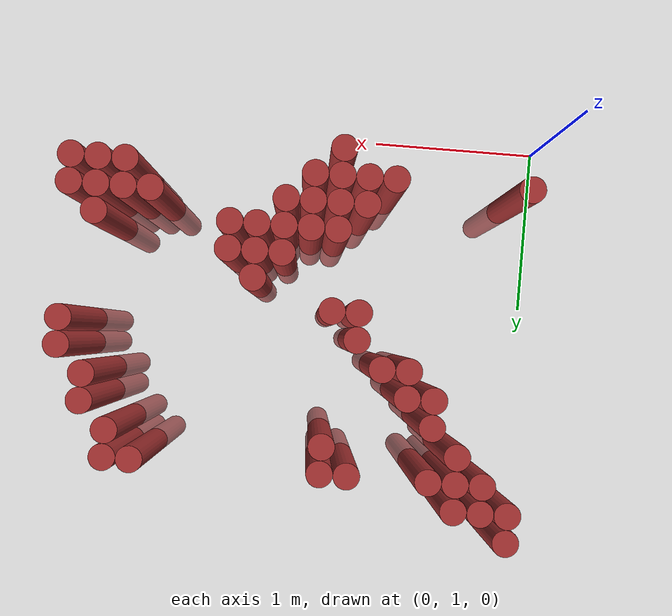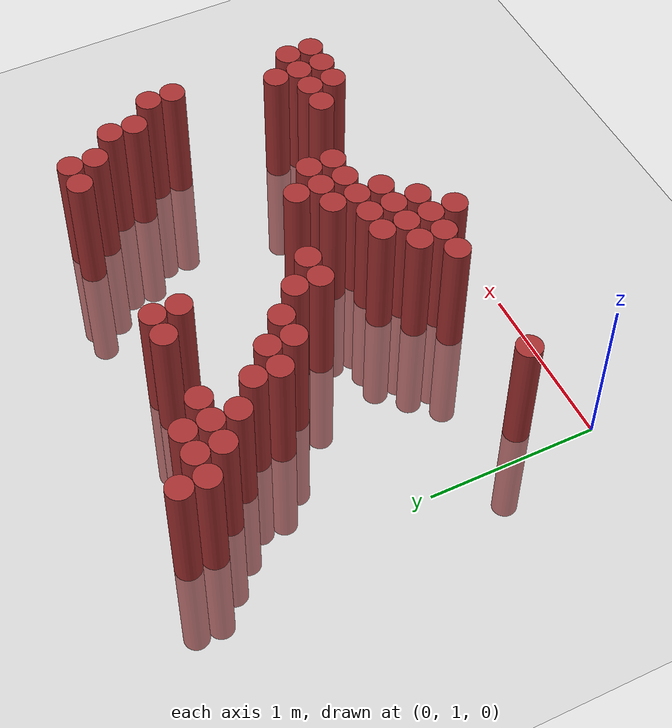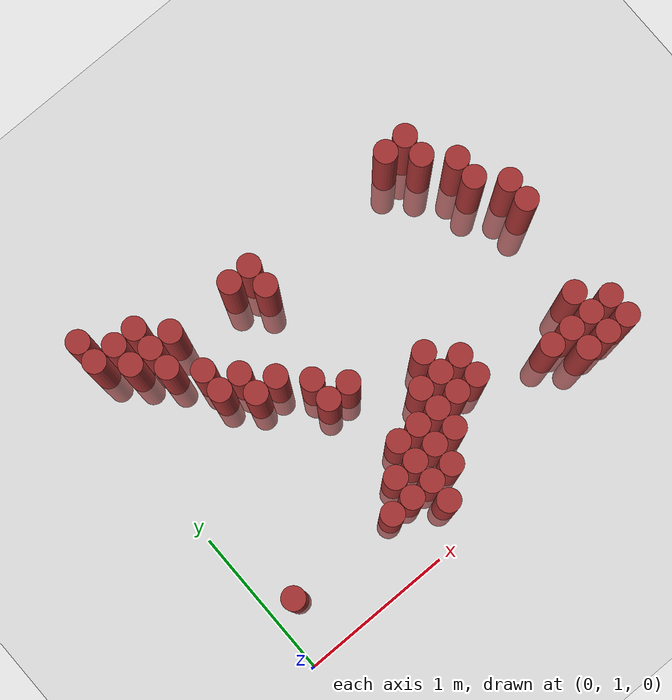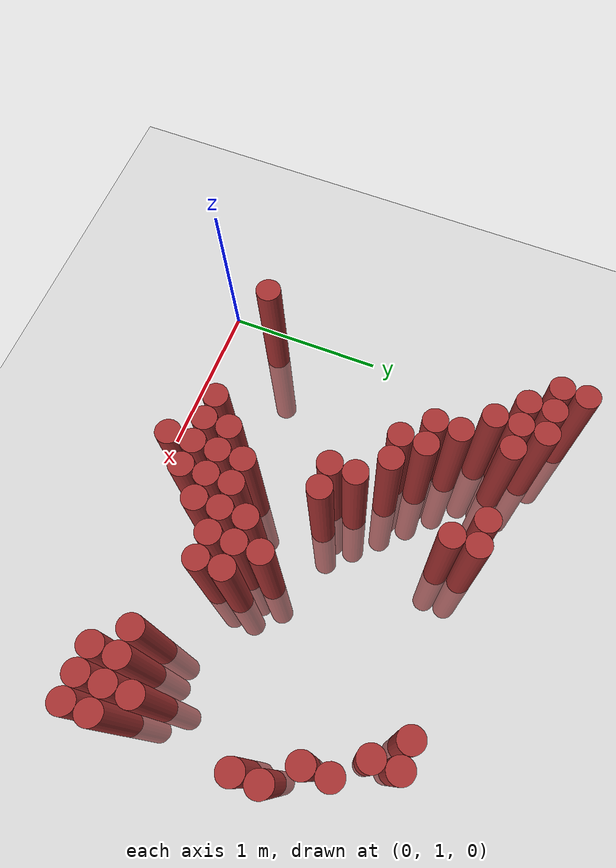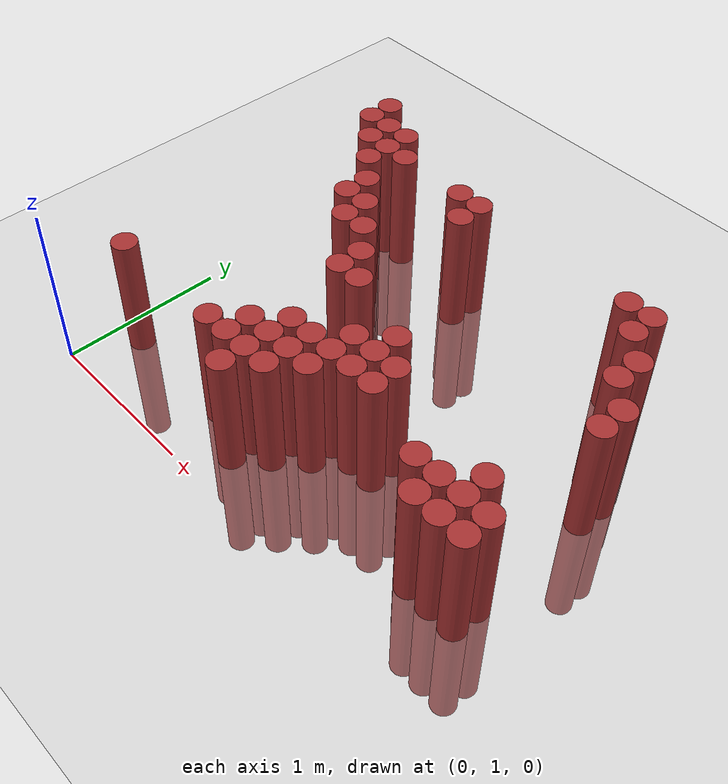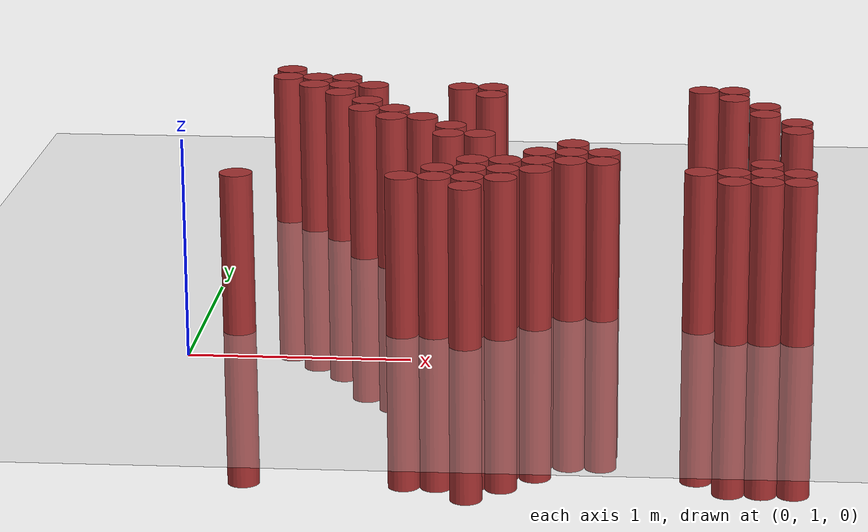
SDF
<sdf version="1.6">
 <world name="default">
  <model name="ground_plane">
   <static>1</static>
   <link name="link">
    <collision name="collision">
     <geometry><plane><normal>0 0 1</normal><size>100 100</size></plane></geometry>
     <surface><friction><ode><mu>100</mu><mu2>50</mu2></ode></friction></surface>
    </collision>
    <visual name="visual">
     <cast_shadows>0</cast_shadows>
     <geometry><plane><normal>0 0 1</normal><size>100 100</size></plane></geometry>
     <material>
      <script><uri>file://media/materials/scripts/gazebo.material</uri><name>Gazebo/Grey</name></script>
     </material>
    </visual>
   </link>
  </model>
  <model name="unit_cylinder_418">
   <static>1</static>
   <pose>0.175000 1.375000 0.000000 0.000000 0.000000 0.000000</pose>
   <link name="link">
    <inertial>
     <mass>1</mass>
     <inertia><ixx>0.145833</ixx><ixy>0</ixy><ixz>0</ixz><iyy>0.145833</iyy><iyz>0</iyz><izz>0.125</izz></inertia>
    </inertial>
    <collision name="collision">
     <geometry><cylinder><radius>0.075000</radius><length>1.5</length></cylinder></geometry>
    </collision>
    <visual name="visual">
     <geometry><cylinder><radius>0.075000</radius><length>1.5</length></cylinder></geometry>
     <material>
      <ambient>0.648000 0.192000 0.192000 1</ambient>
      <diffuse>0.648000 0.192000 0.192000 1</diffuse>
     </material>
     <material>
      <script><name>Gazebo/Grey</name><uri>file://media/materials/scripts/gazebo.material</uri></script>
     </material>
    </visual>
   </link>
  </model>
  <model name="unit_cylinder_419">
   <static>1</static>
   <pose>0.175000 3.175000 0.000000 0.000000 0.000000 0.000000</pose>
   <link name="link">
    <inertial>
     <mass>1</mass>
     <inertia><ixx>0.145833</ixx><ixy>0</ixy><ixz>0</ixz><iyy>0.145833</iyy><iyz>0</iyz><izz>0.125</izz></inertia>
    </inertial>
    <collision name="collision">
     <geometry><cylinder><radius>0.075000</radius><length>1.5</length></cylinder></geometry>
    </collision>
    <visual name="visual">
     <geometry><cylinder><radius>0.075000</radius><length>1.5</length></cylinder></geometry>
     <material>
      <ambient>0.648000 0.192000 0.192000 1</ambient>
      <diffuse>0.648000 0.192000 0.192000 1</diffuse>
     </material>
     <material>
      <script><name>Gazebo/Grey</name><uri>file://media/materials/scripts/gazebo.material</uri></script>
     </material>
    </visual>
   </link>
  </model>
  <model name="unit_cylinder_420">
   <static>1</static>
   <pose>0.175000 3.325000 0.000000 0.000000 0.000000 0.000000</pose>
   <link name="link">
    <inertial>
     <mass>1</mass>
     <inertia><ixx>0.145833</ixx><ixy>0</ixy><ixz>0</ixz><iyy>0.145833</iyy><iyz>0</iyz><izz>0.125</izz></inertia>
    </inertial>
    <collision name="collision">
     <geometry><cylinder><radius>0.075000</radius><length>1.5</length></cylinder></geometry>
    </collision>
    <visual name="visual">
     <geometry><cylinder><radius>0.075000</radius><length>1.5</length></cylinder></geometry>
     <material>
      <ambient>0.648000 0.192000 0.192000 1</ambient>
      <diffuse>0.648000 0.192000 0.192000 1</diffuse>
     </material>
     <material>
      <script><name>Gazebo/Grey</name><uri>file://media/materials/scripts/gazebo.material</uri></script>
     </material>
    </visual>
   </link>
  </model>
  <model name="unit_cylinder_428">
   <static>1</static>
   <pose>0.325000 3.025000 0.000000 0.000000 0.000000 0.000000</pose>
   <link name="link">
    <inertial>
     <mass>1</mass>
     <inertia><ixx>0.145833</ixx><ixy>0</ixy><ixz>0</ixz><iyy>0.145833</iyy><iyz>0</iyz><izz>0.125</izz></inertia>
    </inertial>
    <collision name="collision">
     <geometry><cylinder><radius>0.075000</radius><length>1.5</length></cylinder></geometry>
    </collision>
    <visual name="visual">
     <geometry><cylinder><radius>0.075000</radius><length>1.5</length></cylinder></geometry>
     <material>
      <ambient>0.648000 0.192000 0.192000 1</ambient>
      <diffuse>0.648000 0.192000 0.192000 1</diffuse>
     </material>
     <material>
      <script><name>Gazebo/Grey</name><uri>file://media/materials/scripts/gazebo.material</uri></script>
     </material>
    </visual>
   </link>
  </model>
  <model name="unit_cylinder_429">
   <static>1</static>
   <pose>0.325000 3.175000 0.000000 0.000000 0.000000 0.000000</pose>
   <link name="link">
    <inertial>
     <mass>1</mass>
     <inertia><ixx>0.145833</ixx><ixy>0</ixy><ixz>0</ixz><iyy>0.145833</iyy><iyz>0</iyz><izz>0.125</izz></inertia>
    </inertial>
    <collision name="collision">
     <geometry><cylinder><radius>0.075000</radius><length>1.5</length></cylinder></geometry>
    </collision>
    <visual name="visual">
     <geometry><cylinder><radius>0.075000</radius><length>1.5</length></cylinder></geometry>
     <material>
      <ambient>0.648000 0.192000 0.192000 1</ambient>
      <diffuse>0.648000 0.192000 0.192000 1</diffuse>
     </material>
     <material>
      <script><name>Gazebo/Grey</name><uri>file://media/materials/scripts/gazebo.material</uri></script>
     </material>
    </visual>
   </link>
  </model>
  <model name="unit_cylinder_437">
   <static>1</static>
   <pose>0.475000 2.875000 0.000000 0.000000 0.000000 0.000000</pose>
   <link name="link">
    <inertial>
     <mass>1</mass>
     <inertia><ixx>0.145833</ixx><ixy>0</ixy><ixz>0</ixz><iyy>0.145833</iyy><iyz>0</iyz><izz>0.125</izz></inertia>
    </inertial>
    <collision name="collision">
     <geometry><cylinder><radius>0.075000</radius><length>1.5</length></cylinder></geometry>
    </collision>
    <visual name="visual">
     <geometry><cylinder><radius>0.075000</radius><length>1.5</length></cylinder></geometry>
     <material>
      <ambient>0.648000 0.192000 0.192000 1</ambient>
      <diffuse>0.648000 0.192000 0.192000 1</diffuse>
     </material>
     <material>
      <script><name>Gazebo/Grey</name><uri>file://media/materials/scripts/gazebo.material</uri></script>
     </material>
    </visual>
   </link>
  </model>
  <model name="unit_cylinder_438">
   <static>1</static>
   <pose>0.475000 3.025000 0.000000 0.000000 0.000000 0.000000</pose>
   <link name="link">
    <inertial>
     <mass>1</mass>
     <inertia><ixx>0.145833</ixx><ixy>0</ixy><ixz>0</ixz><iyy>0.145833</iyy><iyz>0</iyz><izz>0.125</izz></inertia>
    </inertial>
    <collision name="collision">
     <geometry><cylinder><radius>0.075000</radius><length>1.5</length></cylinder></geometry>
    </collision>
    <visual name="visual">
     <geometry><cylinder><radius>0.075000</radius><length>1.5</length></cylinder></geometry>
     <material>
      <ambient>0.648000 0.192000 0.192000 1</ambient>
      <diffuse>0.648000 0.192000 0.192000 1</diffuse>
     </material>
     <material>
      <script><name>Gazebo/Grey</name><uri>file://media/materials/scripts/gazebo.material</uri></script>
     </material>
    </visual>
   </link>
  </model>
  <model name="unit_cylinder_439">
   <static>1</static>
   <pose>0.475000 3.175000 0.000000 0.000000 0.000000 0.000000</pose>
   <link name="link">
    <inertial>
     <mass>1</mass>
     <inertia><ixx>0.145833</ixx><ixy>0</ixy><ixz>0</ixz><iyy>0.145833</iyy><iyz>0</iyz><izz>0.125</izz></inertia>
    </inertial>
    <collision name="collision">
     <geometry><cylinder><radius>0.075000</radius><length>1.5</length></cylinder></geometry>
    </collision>
    <visual name="visual">
     <geometry><cylinder><radius>0.075000</radius><length>1.5</length></cylinder></geometry>
     <material>
      <ambient>0.648000 0.192000 0.192000 1</ambient>
      <diffuse>0.648000 0.192000 0.192000 1</diffuse>
     </material>
     <material>
      <script><name>Gazebo/Grey</name><uri>file://media/materials/scripts/gazebo.material</uri></script>
     </material>
    </visual>
   </link>
  </model>
  <model name="unit_cylinder_442">
   <static>1</static>
   <pose>0.625000 2.575000 0.000000 0.000000 0.000000 0.000000</pose>
   <link name="link">
    <inertial>
     <mass>1</mass>
     <inertia><ixx>0.145833</ixx><ixy>0</ixy><ixz>0</ixz><iyy>0.145833</iyy><iyz>0</iyz><izz>0.125</izz></inertia>
    </inertial>
    <collision name="collision">
     <geometry><cylinder><radius>0.075000</radius><length>1.5</length></cylinder></geometry>
    </collision>
    <visual name="visual">
     <geometry><cylinder><radius>0.075000</radius><length>1.5</length></cylinder></geometry>
     <material>
      <ambient>0.648000 0.192000 0.192000 1</ambient>
      <diffuse>0.648000 0.192000 0.192000 1</diffuse>
     </material>
     <material>
      <script><name>Gazebo/Grey</name><uri>file://media/materials/scripts/gazebo.material</uri></script>
     </material>
    </visual>
   </link>
  </model>
  <model name="unit_cylinder_443">
   <static>1</static>
   <pose>0.625000 2.725000 0.000000 0.000000 0.000000 0.000000</pose>
   <link name="link">
    <inertial>
     <mass>1</mass>
     <inertia><ixx>0.145833</ixx><ixy>0</ixy><ixz>0</ixz><iyy>0.145833</iyy><iyz>0</iyz><izz>0.125</izz></inertia>
    </inertial>
    <collision name="collision">
     <geometry><cylinder><radius>0.075000</radius><length>1.5</length></cylinder></geometry>
    </collision>
    <visual name="visual">
     <geometry><cylinder><radius>0.075000</radius><length>1.5</length></cylinder></geometry>
     <material>
      <ambient>0.648000 0.192000 0.192000 1</ambient>
      <diffuse>0.648000 0.192000 0.192000 1</diffuse>
     </material>
     <material>
      <script><name>Gazebo/Grey</name><uri>file://media/materials/scripts/gazebo.material</uri></script>
     </material>
    </visual>
   </link>
  </model>
  <model name="unit_cylinder_444">
   <static>1</static>
   <pose>0.625000 3.025000 0.000000 0.000000 0.000000 0.000000</pose>
   <link name="link">
    <inertial>
     <mass>1</mass>
     <inertia><ixx>0.145833</ixx><ixy>0</ixy><ixz>0</ixz><iyy>0.145833</iyy><iyz>0</iyz><izz>0.125</izz></inertia>
    </inertial>
    <collision name="collision">
     <geometry><cylinder><radius>0.075000</radius><length>1.5</length></cylinder></geometry>
    </collision>
    <visual name="visual">
     <geometry><cylinder><radius>0.075000</radius><length>1.5</length></cylinder></geometry>
     <material>
      <ambient>0.648000 0.192000 0.192000 1</ambient>
      <diffuse>0.648000 0.192000 0.192000 1</diffuse>
     </material>
     <material>
      <script><name>Gazebo/Grey</name><uri>file://media/materials/scripts/gazebo.material</uri></script>
     </material>
    </visual>
   </link>
  </model>
  <model name="unit_cylinder_451">
   <static>1</static>
   <pose>0.775000 2.425000 0.000000 0.000000 0.000000 0.000000</pose>
   <link name="link">
    <inertial>
     <mass>1</mass>
     <inertia><ixx>0.145833</ixx><ixy>0</ixy><ixz>0</ixz><iyy>0.145833</iyy><iyz>0</iyz><izz>0.125</izz></inertia>
    </inertial>
    <collision name="collision">
     <geometry><cylinder><radius>0.075000</radius><length>1.5</length></cylinder></geometry>
    </collision>
    <visual name="visual">
     <geometry><cylinder><radius>0.075000</radius><length>1.5</length></cylinder></geometry>
     <material>
      <ambient>0.648000 0.192000 0.192000 1</ambient>
      <diffuse>0.648000 0.192000 0.192000 1</diffuse>
     </material>
     <material>
      <script><name>Gazebo/Grey</name><uri>file://media/materials/scripts/gazebo.material</uri></script>
     </material>
    </visual>
   </link>
  </model>
  <model name="unit_cylinder_452">
   <static>1</static>
   <pose>0.775000 2.575000 0.000000 0.000000 0.000000 0.000000</pose>
   <link name="link">
    <inertial>
     <mass>1</mass>
     <inertia><ixx>0.145833</ixx><ixy>0</ixy><ixz>0</ixz><iyy>0.145833</iyy><iyz>0</iyz><izz>0.125</izz></inertia>
    </inertial>
    <collision name="collision">
     <geometry><cylinder><radius>0.075000</radius><length>1.5</length></cylinder></geometry>
    </collision>
    <visual name="visual">
     <geometry><cylinder><radius>0.075000</radius><length>1.5</length></cylinder></geometry>
     <material>
      <ambient>0.648000 0.192000 0.192000 1</ambient>
      <diffuse>0.648000 0.192000 0.192000 1</diffuse>
     </material>
     <material>
      <script><name>Gazebo/Grey</name><uri>file://media/materials/scripts/gazebo.material</uri></script>
     </material>
    </visual>
   </link>
  </model>
  <model name="unit_cylinder_467">
   <static>1</static>
   <pose>0.925000 1.375000 0.000000 0.000000 0.000000 0.000000</pose>
   <link name="link">
    <inertial>
     <mass>1</mass>
     <inertia><ixx>0.145833</ixx><ixy>0</ixy><ixz>0</ixz><iyy>0.145833</iyy><iyz>0</iyz><izz>0.125</izz></inertia>
    </inertial>
    <collision name="collision">
     <geometry><cylinder><radius>0.075000</radius><length>1.5</length></cylinder></geometry>
    </collision>
    <visual name="visual">
     <geometry><cylinder><radius>0.075000</radius><length>1.5</length></cylinder></geometry>
     <material>
      <ambient>0.648000 0.192000 0.192000 1</ambient>
      <diffuse>0.648000 0.192000 0.192000 1</diffuse>
     </material>
     <material>
      <script><name>Gazebo/Grey</name><uri>file://media/materials/scripts/gazebo.material</uri></script>
     </material>
    </visual>
   </link>
  </model>
  <model name="unit_cylinder_468">
   <static>1</static>
   <pose>0.925000 2.425000 0.000000 0.000000 0.000000 0.000000</pose>
   <link name="link">
    <inertial>
     <mass>1</mass>
     <inertia><ixx>0.145833</ixx><ixy>0</ixy><ixz>0</ixz><iyy>0.145833</iyy><iyz>0</iyz><izz>0.125</izz></inertia>
    </inertial>
    <collision name="collision">
     <geometry><cylinder><radius>0.075000</radius><length>1.5</length></cylinder></geometry>
    </collision>
    <visual name="visual">
     <geometry><cylinder><radius>0.075000</radius><length>1.5</length></cylinder></geometry>
     <material>
      <ambient>0.648000 0.192000 0.192000 1</ambient>
      <diffuse>0.648000 0.192000 0.192000 1</diffuse>
     </material>
     <material>
      <script><name>Gazebo/Grey</name><uri>file://media/materials/scripts/gazebo.material</uri></script>
     </material>
    </visual>
   </link>
  </model>
  <model name="unit_cylinder_477">
   <static>1</static>
   <pose>1.075000 1.375000 0.000000 0.000000 0.000000 0.000000</pose>
   <link name="link">
    <inertial>
     <mass>1</mass>
     <inertia><ixx>0.145833</ixx><ixy>0</ixy><ixz>0</ixz><iyy>0.145833</iyy><iyz>0</iyz><izz>0.125</izz></inertia>
    </inertial>
    <collision name="collision">
     <geometry><cylinder><radius>0.075000</radius><length>1.5</length></cylinder></geometry>
    </collision>
    <visual name="visual">
     <geometry><cylinder><radius>0.075000</radius><length>1.5</length></cylinder></geometry>
     <material>
      <ambient>0.648000 0.192000 0.192000 1</ambient>
      <diffuse>0.648000 0.192000 0.192000 1</diffuse>
     </material>
     <material>
      <script><name>Gazebo/Grey</name><uri>file://media/materials/scripts/gazebo.material</uri></script>
     </material>
    </visual>
   </link>
  </model>
  <model name="unit_cylinder_478">
   <static>1</static>
   <pose>1.075000 1.525000 0.000000 0.000000 0.000000 0.000000</pose>
   <link name="link">
    <inertial>
     <mass>1</mass>
     <inertia><ixx>0.145833</ixx><ixy>0</ixy><ixz>0</ixz><iyy>0.145833</iyy><iyz>0</iyz><izz>0.125</izz></inertia>
    </inertial>
    <collision name="collision">
     <geometry><cylinder><radius>0.075000</radius><length>1.5</length></cylinder></geometry>
    </collision>
    <visual name="visual">
     <geometry><cylinder><radius>0.075000</radius><length>1.5</length></cylinder></geometry>
     <material>
      <ambient>0.648000 0.192000 0.192000 1</ambient>
      <diffuse>0.648000 0.192000 0.192000 1</diffuse>
     </material>
     <material>
      <script><name>Gazebo/Grey</name><uri>file://media/materials/scripts/gazebo.material</uri></script>
     </material>
    </visual>
   </link>
  </model>
  <model name="unit_cylinder_479">
   <static>1</static>
   <pose>1.075000 2.125000 0.000000 0.000000 0.000000 0.000000</pose>
   <link name="link">
    <inertial>
     <mass>1</mass>
     <inertia><ixx>0.145833</ixx><ixy>0</ixy><ixz>0</ixz><iyy>0.145833</iyy><iyz>0</iyz><izz>0.125</izz></inertia>
    </inertial>
    <collision name="collision">
     <geometry><cylinder><radius>0.075000</radius><length>1.5</length></cylinder></geometry>
    </collision>
    <visual name="visual">
     <geometry><cylinder><radius>0.075000</radius><length>1.5</length></cylinder></geometry>
     <material>
      <ambient>0.648000 0.192000 0.192000 1</ambient>
      <diffuse>0.648000 0.192000 0.192000 1</diffuse>
     </material>
     <material>
      <script><name>Gazebo/Grey</name><uri>file://media/materials/scripts/gazebo.material</uri></script>
     </material>
    </visual>
   </link>
  </model>
  <model name="unit_cylinder_480">
   <static>1</static>
   <pose>1.075000 2.275000 0.000000 0.000000 0.000000 0.000000</pose>
   <link name="link">
    <inertial>
     <mass>1</mass>
     <inertia><ixx>0.145833</ixx><ixy>0</ixy><ixz>0</ixz><iyy>0.145833</iyy><iyz>0</iyz><izz>0.125</izz></inertia>
    </inertial>
    <collision name="collision">
     <geometry><cylinder><radius>0.075000</radius><length>1.5</length></cylinder></geometry>
    </collision>
    <visual name="visual">
     <geometry><cylinder><radius>0.075000</radius><length>1.5</length></cylinder></geometry>
     <material>
      <ambient>0.648000 0.192000 0.192000 1</ambient>
      <diffuse>0.648000 0.192000 0.192000 1</diffuse>
     </material>
     <material>
      <script><name>Gazebo/Grey</name><uri>file://media/materials/scripts/gazebo.material</uri></script>
     </material>
    </visual>
   </link>
  </model>
  <model name="unit_cylinder_481">
   <static>1</static>
   <pose>1.075000 3.025000 0.000000 0.000000 0.000000 0.000000</pose>
   <link name="link">
    <inertial>
     <mass>1</mass>
     <inertia><ixx>0.145833</ixx><ixy>0</ixy><ixz>0</ixz><iyy>0.145833</iyy><iyz>0</iyz><izz>0.125</izz></inertia>
    </inertial>
    <collision name="collision">
     <geometry><cylinder><radius>0.075000</radius><length>1.5</length></cylinder></geometry>
    </collision>
    <visual name="visual">
     <geometry><cylinder><radius>0.075000</radius><length>1.5</length></cylinder></geometry>
     <material>
      <ambient>0.648000 0.192000 0.192000 1</ambient>
      <diffuse>0.648000 0.192000 0.192000 1</diffuse>
     </material>
     <material>
      <script><name>Gazebo/Grey</name><uri>file://media/materials/scripts/gazebo.material</uri></script>
     </material>
    </visual>
   </link>
  </model>
  <model name="unit_cylinder_491">
   <static>1</static>
   <pose>1.225000 1.225000 0.000000 0.000000 0.000000 0.000000</pose>
   <link name="link">
    <inertial>
     <mass>1</mass>
     <inertia><ixx>0.145833</ixx><ixy>0</ixy><ixz>0</ixz><iyy>0.145833</iyy><iyz>0</iyz><izz>0.125</izz></inertia>
    </inertial>
    <collision name="collision">
     <geometry><cylinder><radius>0.075000</radius><length>1.5</length></cylinder></geometry>
    </collision>
    <visual name="visual">
     <geometry><cylinder><radius>0.075000</radius><length>1.5</length></cylinder></geometry>
     <material>
      <ambient>0.648000 0.192000 0.192000 1</ambient>
      <diffuse>0.648000 0.192000 0.192000 1</diffuse>
     </material>
     <material>
      <script><name>Gazebo/Grey</name><uri>file://media/materials/scripts/gazebo.material</uri></script>
     </material>
    </visual>
   </link>
  </model>
  <model name="unit_cylinder_492">
   <static>1</static>
   <pose>1.225000 1.375000 0.000000 0.000000 0.000000 0.000000</pose>
   <link name="link">
    <inertial>
     <mass>1</mass>
     <inertia><ixx>0.145833</ixx><ixy>0</ixy><ixz>0</ixz><iyy>0.145833</iyy><iyz>0</iyz><izz>0.125</izz></inertia>
    </inertial>
    <collision name="collision">
     <geometry><cylinder><radius>0.075000</radius><length>1.5</length></cylinder></geometry>
    </collision>
    <visual name="visual">
     <geometry><cylinder><radius>0.075000</radius><length>1.5</length></cylinder></geometry>
     <material>
      <ambient>0.648000 0.192000 0.192000 1</ambient>
      <diffuse>0.648000 0.192000 0.192000 1</diffuse>
     </material>
     <material>
      <script><name>Gazebo/Grey</name><uri>file://media/materials/scripts/gazebo.material</uri></script>
     </material>
    </visual>
   </link>
  </model>
  <model name="unit_cylinder_493">
   <static>1</static>
   <pose>1.225000 1.525000 0.000000 0.000000 0.000000 0.000000</pose>
   <link name="link">
    <inertial>
     <mass>1</mass>
     <inertia><ixx>0.145833</ixx><ixy>0</ixy><ixz>0</ixz><iyy>0.145833</iyy><iyz>0</iyz><izz>0.125</izz></inertia>
    </inertial>
    <collision name="collision">
     <geometry><cylinder><radius>0.075000</radius><length>1.5</length></cylinder></geometry>
    </collision>
    <visual name="visual">
     <geometry><cylinder><radius>0.075000</radius><length>1.5</length></cylinder></geometry>
     <material>
      <ambient>0.648000 0.192000 0.192000 1</ambient>
      <diffuse>0.648000 0.192000 0.192000 1</diffuse>
     </material>
     <material>
      <script><name>Gazebo/Grey</name><uri>file://media/materials/scripts/gazebo.material</uri></script>
     </material>
    </visual>
   </link>
  </model>
  <model name="unit_cylinder_494">
   <static>1</static>
   <pose>1.225000 1.675000 0.000000 0.000000 0.000000 0.000000</pose>
   <link name="link">
    <inertial>
     <mass>1</mass>
     <inertia><ixx>0.145833</ixx><ixy>0</ixy><ixz>0</ixz><iyy>0.145833</iyy><iyz>0</iyz><izz>0.125</izz></inertia>
    </inertial>
    <collision name="collision">
     <geometry><cylinder><radius>0.075000</radius><length>1.5</length></cylinder></geometry>
    </collision>
    <visual name="visual">
     <geometry><cylinder><radius>0.075000</radius><length>1.5</length></cylinder></geometry>
     <material>
      <ambient>0.648000 0.192000 0.192000 1</ambient>
      <diffuse>0.648000 0.192000 0.192000 1</diffuse>
     </material>
     <material>
      <script><name>Gazebo/Grey</name><uri>file://media/materials/scripts/gazebo.material</uri></script>
     </material>
    </visual>
   </link>
  </model>
  <model name="unit_cylinder_495">
   <static>1</static>
   <pose>1.225000 2.125000 0.000000 0.000000 0.000000 0.000000</pose>
   <link name="link">
    <inertial>
     <mass>1</mass>
     <inertia><ixx>0.145833</ixx><ixy>0</ixy><ixz>0</ixz><iyy>0.145833</iyy><iyz>0</iyz><izz>0.125</izz></inertia>
    </inertial>
    <collision name="collision">
     <geometry><cylinder><radius>0.075000</radius><length>1.5</length></cylinder></geometry>
    </collision>
    <visual name="visual">
     <geometry><cylinder><radius>0.075000</radius><length>1.5</length></cylinder></geometry>
     <material>
      <ambient>0.648000 0.192000 0.192000 1</ambient>
      <diffuse>0.648000 0.192000 0.192000 1</diffuse>
     </material>
     <material>
      <script><name>Gazebo/Grey</name><uri>file://media/materials/scripts/gazebo.material</uri></script>
     </material>
    </visual>
   </link>
  </model>
  <model name="unit_cylinder_496">
   <static>1</static>
   <pose>1.225000 2.875000 0.000000 0.000000 0.000000 0.000000</pose>
   <link name="link">
    <inertial>
     <mass>1</mass>
     <inertia><ixx>0.145833</ixx><ixy>0</ixy><ixz>0</ixz><iyy>0.145833</iyy><iyz>0</iyz><izz>0.125</izz></inertia>
    </inertial>
    <collision name="collision">
     <geometry><cylinder><radius>0.075000</radius><length>1.5</length></cylinder></geometry>
    </collision>
    <visual name="visual">
     <geometry><cylinder><radius>0.075000</radius><length>1.5</length></cylinder></geometry>
     <material>
      <ambient>0.648000 0.192000 0.192000 1</ambient>
      <diffuse>0.648000 0.192000 0.192000 1</diffuse>
     </material>
     <material>
      <script><name>Gazebo/Grey</name><uri>file://media/materials/scripts/gazebo.material</uri></script>
     </material>
    </visual>
   </link>
  </model>
  <model name="unit_cylinder_497">
   <static>1</static>
   <pose>1.225000 3.025000 0.000000 0.000000 0.000000 0.000000</pose>
   <link name="link">
    <inertial>
     <mass>1</mass>
     <inertia><ixx>0.145833</ixx><ixy>0</ixy><ixz>0</ixz><iyy>0.145833</iyy><iyz>0</iyz><izz>0.125</izz></inertia>
    </inertial>
    <collision name="collision">
     <geometry><cylinder><radius>0.075000</radius><length>1.5</length></cylinder></geometry>
    </collision>
    <visual name="visual">
     <geometry><cylinder><radius>0.075000</radius><length>1.5</length></cylinder></geometry>
     <material>
      <ambient>0.648000 0.192000 0.192000 1</ambient>
      <diffuse>0.648000 0.192000 0.192000 1</diffuse>
     </material>
     <material>
      <script><name>Gazebo/Grey</name><uri>file://media/materials/scripts/gazebo.material</uri></script>
     </material>
    </visual>
   </link>
  </model>
  <model name="unit_cylinder_504">
   <static>1</static>
   <pose>1.375000 1.375000 0.000000 0.000000 0.000000 0.000000</pose>
   <link name="link">
    <inertial>
     <mass>1</mass>
     <inertia><ixx>0.145833</ixx><ixy>0</ixy><ixz>0</ixz><iyy>0.145833</iyy><iyz>0</iyz><izz>0.125</izz></inertia>
    </inertial>
    <collision name="collision">
     <geometry><cylinder><radius>0.075000</radius><length>1.5</length></cylinder></geometry>
    </collision>
    <visual name="visual">
     <geometry><cylinder><radius>0.075000</radius><length>1.5</length></cylinder></geometry>
     <material>
      <ambient>0.648000 0.192000 0.192000 1</ambient>
      <diffuse>0.648000 0.192000 0.192000 1</diffuse>
     </material>
     <material>
      <script><name>Gazebo/Grey</name><uri>file://media/materials/scripts/gazebo.material</uri></script>
     </material>
    </visual>
   </link>
  </model>
  <model name="unit_cylinder_505">
   <static>1</static>
   <pose>1.375000 1.525000 0.000000 0.000000 0.000000 0.000000</pose>
   <link name="link">
    <inertial>
     <mass>1</mass>
     <inertia><ixx>0.145833</ixx><ixy>0</ixy><ixz>0</ixz><iyy>0.145833</iyy><iyz>0</iyz><izz>0.125</izz></inertia>
    </inertial>
    <collision name="collision">
     <geometry><cylinder><radius>0.075000</radius><length>1.5</length></cylinder></geometry>
    </collision>
    <visual name="visual">
     <geometry><cylinder><radius>0.075000</radius><length>1.5</length></cylinder></geometry>
     <material>
      <ambient>0.648000 0.192000 0.192000 1</ambient>
      <diffuse>0.648000 0.192000 0.192000 1</diffuse>
     </material>
     <material>
      <script><name>Gazebo/Grey</name><uri>file://media/materials/scripts/gazebo.material</uri></script>
     </material>
    </visual>
   </link>
  </model>
  <model name="unit_cylinder_506">
   <static>1</static>
   <pose>1.375000 1.675000 0.000000 0.000000 0.000000 0.000000</pose>
   <link name="link">
    <inertial>
     <mass>1</mass>
     <inertia><ixx>0.145833</ixx><ixy>0</ixy><ixz>0</ixz><iyy>0.145833</iyy><iyz>0</iyz><izz>0.125</izz></inertia>
    </inertial>
    <collision name="collision">
     <geometry><cylinder><radius>0.075000</radius><length>1.5</length></cylinder></geometry>
    </collision>
    <visual name="visual">
     <geometry><cylinder><radius>0.075000</radius><length>1.5</length></cylinder></geometry>
     <material>
      <ambient>0.648000 0.192000 0.192000 1</ambient>
      <diffuse>0.648000 0.192000 0.192000 1</diffuse>
     </material>
     <material>
      <script><name>Gazebo/Grey</name><uri>file://media/materials/scripts/gazebo.material</uri></script>
     </material>
    </visual>
   </link>
  </model>
  <model name="unit_cylinder_511">
   <static>1</static>
   <pose>1.525000 1.525000 0.000000 0.000000 0.000000 0.000000</pose>
   <link name="link">
    <inertial>
     <mass>1</mass>
     <inertia><ixx>0.145833</ixx><ixy>0</ixy><ixz>0</ixz><iyy>0.145833</iyy><iyz>0</iyz><izz>0.125</izz></inertia>
    </inertial>
    <collision name="collision">
     <geometry><cylinder><radius>0.075000</radius><length>1.5</length></cylinder></geometry>
    </collision>
    <visual name="visual">
     <geometry><cylinder><radius>0.075000</radius><length>1.5</length></cylinder></geometry>
     <material>
      <ambient>0.648000 0.192000 0.192000 1</ambient>
      <diffuse>0.648000 0.192000 0.192000 1</diffuse>
     </material>
     <material>
      <script><name>Gazebo/Grey</name><uri>file://media/materials/scripts/gazebo.material</uri></script>
     </material>
    </visual>
   </link>
  </model>
  <model name="unit_cylinder_512">
   <static>1</static>
   <pose>1.525000 1.675000 0.000000 0.000000 0.000000 0.000000</pose>
   <link name="link">
    <inertial>
     <mass>1</mass>
     <inertia><ixx>0.145833</ixx><ixy>0</ixy><ixz>0</ixz><iyy>0.145833</iyy><iyz>0</iyz><izz>0.125</izz></inertia>
    </inertial>
    <collision name="collision">
     <geometry><cylinder><radius>0.075000</radius><length>1.5</length></cylinder></geometry>
    </collision>
    <visual name="visual">
     <geometry><cylinder><radius>0.075000</radius><length>1.5</length></cylinder></geometry>
     <material>
      <ambient>0.648000 0.192000 0.192000 1</ambient>
      <diffuse>0.648000 0.192000 0.192000 1</diffuse>
     </material>
     <material>
      <script><name>Gazebo/Grey</name><uri>file://media/materials/scripts/gazebo.material</uri></script>
     </material>
    </visual>
   </link>
  </model>
  <model name="unit_cylinder_513">
   <static>1</static>
   <pose>1.525000 1.825000 0.000000 0.000000 0.000000 0.000000</pose>
   <link name="link">
    <inertial>
     <mass>1</mass>
     <inertia><ixx>0.145833</ixx><ixy>0</ixy><ixz>0</ixz><iyy>0.145833</iyy><iyz>0</iyz><izz>0.125</izz></inertia>
    </inertial>
    <collision name="collision">
     <geometry><cylinder><radius>0.075000</radius><length>1.5</length></cylinder></geometry>
    </collision>
    <visual name="visual">
     <geometry><cylinder><radius>0.075000</radius><length>1.5</length></cylinder></geometry>
     <material>
      <ambient>0.648000 0.192000 0.192000 1</ambient>
      <diffuse>0.648000 0.192000 0.192000 1</diffuse>
     </material>
     <material>
      <script><name>Gazebo/Grey</name><uri>file://media/materials/scripts/gazebo.material</uri></script>
     </material>
    </visual>
   </link>
  </model>
  <model name="unit_cylinder_516">
   <static>1</static>
   <pose>1.675000 1.675000 0.000000 0.000000 0.000000 0.000000</pose>
   <link name="link">
    <inertial>
     <mass>1</mass>
     <inertia><ixx>0.145833</ixx><ixy>0</ixy><ixz>0</ixz><iyy>0.145833</iyy><iyz>0</iyz><izz>0.125</izz></inertia>
    </inertial>
    <collision name="collision">
     <geometry><cylinder><radius>0.075000</radius><length>1.5</length></cylinder></geometry>
    </collision>
    <visual name="visual">
     <geometry><cylinder><radius>0.075000</radius><length>1.5</length></cylinder></geometry>
     <material>
      <ambient>0.648000 0.192000 0.192000 1</ambient>
      <diffuse>0.648000 0.192000 0.192000 1</diffuse>
     </material>
     <material>
      <script><name>Gazebo/Grey</name><uri>file://media/materials/scripts/gazebo.material</uri></script>
     </material>
    </visual>
   </link>
  </model>
  <model name="unit_cylinder_517">
   <static>1</static>
   <pose>1.675000 1.825000 0.000000 0.000000 0.000000 0.000000</pose>
   <link name="link">
    <inertial>
     <mass>1</mass>
     <inertia><ixx>0.145833</ixx><ixy>0</ixy><ixz>0</ixz><iyy>0.145833</iyy><iyz>0</iyz><izz>0.125</izz></inertia>
    </inertial>
    <collision name="collision">
     <geometry><cylinder><radius>0.075000</radius><length>1.5</length></cylinder></geometry>
    </collision>
    <visual name="visual">
     <geometry><cylinder><radius>0.075000</radius><length>1.5</length></cylinder></geometry>
     <material>
      <ambient>0.648000 0.192000 0.192000 1</ambient>
      <diffuse>0.648000 0.192000 0.192000 1</diffuse>
     </material>
     <material>
      <script><name>Gazebo/Grey</name><uri>file://media/materials/scripts/gazebo.material</uri></script>
     </material>
    </visual>
   </link>
  </model>
  <model name="unit_cylinder_518">
   <static>1</static>
   <pose>1.675000 1.975000 0.000000 0.000000 0.000000 0.000000</pose>
   <link name="link">
    <inertial>
     <mass>1</mass>
     <inertia><ixx>0.145833</ixx><ixy>0</ixy><ixz>0</ixz><iyy>0.145833</iyy><iyz>0</iyz><izz>0.125</izz></inertia>
    </inertial>
    <collision name="collision">
     <geometry><cylinder><radius>0.075000</radius><length>1.5</length></cylinder></geometry>
    </collision>
    <visual name="visual">
     <geometry><cylinder><radius>0.075000</radius><length>1.5</length></cylinder></geometry>
     <material>
      <ambient>0.648000 0.192000 0.192000 1</ambient>
      <diffuse>0.648000 0.192000 0.192000 1</diffuse>
     </material>
     <material>
      <script><name>Gazebo/Grey</name><uri>file://media/materials/scripts/gazebo.material</uri></script>
     </material>
    </visual>
   </link>
  </model>
  <model name="unit_cylinder_523">
   <static>1</static>
   <pose>1.825000 1.675000 0.000000 0.000000 0.000000 0.000000</pose>
   <link name="link">
    <inertial>
     <mass>1</mass>
     <inertia><ixx>0.145833</ixx><ixy>0</ixy><ixz>0</ixz><iyy>0.145833</iyy><iyz>0</iyz><izz>0.125</izz></inertia>
    </inertial>
    <collision name="collision">
     <geometry><cylinder><radius>0.075000</radius><length>1.5</length></cylinder></geometry>
    </collision>
    <visual name="visual">
     <geometry><cylinder><radius>0.075000</radius><length>1.5</length></cylinder></geometry>
     <material>
      <ambient>0.648000 0.192000 0.192000 1</ambient>
      <diffuse>0.648000 0.192000 0.192000 1</diffuse>
     </material>
     <material>
      <script><name>Gazebo/Grey</name><uri>file://media/materials/scripts/gazebo.material</uri></script>
     </material>
    </visual>
   </link>
  </model>
  <model name="unit_cylinder_524">
   <static>1</static>
   <pose>1.825000 1.825000 0.000000 0.000000 0.000000 0.000000</pose>
   <link name="link">
    <inertial>
     <mass>1</mass>
     <inertia><ixx>0.145833</ixx><ixy>0</ixy><ixz>0</ixz><iyy>0.145833</iyy><iyz>0</iyz><izz>0.125</izz></inertia>
    </inertial>
    <collision name="collision">
     <geometry><cylinder><radius>0.075000</radius><length>1.5</length></cylinder></geometry>
    </collision>
    <visual name="visual">
     <geometry><cylinder><radius>0.075000</radius><length>1.5</length></cylinder></geometry>
     <material>
      <ambient>0.648000 0.192000 0.192000 1</ambient>
      <diffuse>0.648000 0.192000 0.192000 1</diffuse>
     </material>
     <material>
      <script><name>Gazebo/Grey</name><uri>file://media/materials/scripts/gazebo.material</uri></script>
     </material>
    </visual>
   </link>
  </model>
  <model name="unit_cylinder_538">
   <static>1</static>
   <pose>2.275000 1.525000 0.000000 0.000000 0.000000 0.000000</pose>
   <link name="link">
    <inertial>
     <mass>1</mass>
     <inertia><ixx>0.145833</ixx><ixy>0</ixy><ixz>0</ixz><iyy>0.145833</iyy><iyz>0</iyz><izz>0.125</izz></inertia>
    </inertial>
    <collision name="collision">
     <geometry><cylinder><radius>0.075000</radius><length>1.5</length></cylinder></geometry>
    </collision>
    <visual name="visual">
     <geometry><cylinder><radius>0.075000</radius><length>1.5</length></cylinder></geometry>
     <material>
      <ambient>0.648000 0.192000 0.192000 1</ambient>
      <diffuse>0.648000 0.192000 0.192000 1</diffuse>
     </material>
     <material>
      <script><name>Gazebo/Grey</name><uri>file://media/materials/scripts/gazebo.material</uri></script>
     </material>
    </visual>
   </link>
  </model>
  <model name="unit_cylinder_539">
   <static>1</static>
   <pose>2.275000 3.025000 0.000000 0.000000 0.000000 0.000000</pose>
   <link name="link">
    <inertial>
     <mass>1</mass>
     <inertia><ixx>0.145833</ixx><ixy>0</ixy><ixz>0</ixz><iyy>0.145833</iyy><iyz>0</iyz><izz>0.125</izz></inertia>
    </inertial>
    <collision name="collision">
     <geometry><cylinder><radius>0.075000</radius><length>1.5</length></cylinder></geometry>
    </collision>
    <visual name="visual">
     <geometry><cylinder><radius>0.075000</radius><length>1.5</length></cylinder></geometry>
     <material>
      <ambient>0.648000 0.192000 0.192000 1</ambient>
      <diffuse>0.648000 0.192000 0.192000 1</diffuse>
     </material>
     <material>
      <script><name>Gazebo/Grey</name><uri>file://media/materials/scripts/gazebo.material</uri></script>
     </material>
    </visual>
   </link>
  </model>
  <model name="unit_cylinder_542">
   <static>1</static>
   <pose>2.425000 1.375000 0.000000 0.000000 0.000000 0.000000</pose>
   <link name="link">
    <inertial>
     <mass>1</mass>
     <inertia><ixx>0.145833</ixx><ixy>0</ixy><ixz>0</ixz><iyy>0.145833</iyy><iyz>0</iyz><izz>0.125</izz></inertia>
    </inertial>
    <collision name="collision">
     <geometry><cylinder><radius>0.075000</radius><length>1.5</length></cylinder></geometry>
    </collision>
    <visual name="visual">
     <geometry><cylinder><radius>0.075000</radius><length>1.5</length></cylinder></geometry>
     <material>
      <ambient>0.648000 0.192000 0.192000 1</ambient>
      <diffuse>0.648000 0.192000 0.192000 1</diffuse>
     </material>
     <material>
      <script><name>Gazebo/Grey</name><uri>file://media/materials/scripts/gazebo.material</uri></script>
     </material>
    </visual>
   </link>
  </model>
  <model name="unit_cylinder_543">
   <static>1</static>
   <pose>2.425000 1.525000 0.000000 0.000000 0.000000 0.000000</pose>
   <link name="link">
    <inertial>
     <mass>1</mass>
     <inertia><ixx>0.145833</ixx><ixy>0</ixy><ixz>0</ixz><iyy>0.145833</iyy><iyz>0</iyz><izz>0.125</izz></inertia>
    </inertial>
    <collision name="collision">
     <geometry><cylinder><radius>0.075000</radius><length>1.5</length></cylinder></geometry>
    </collision>
    <visual name="visual">
     <geometry><cylinder><radius>0.075000</radius><length>1.5</length></cylinder></geometry>
     <material>
      <ambient>0.648000 0.192000 0.192000 1</ambient>
      <diffuse>0.648000 0.192000 0.192000 1</diffuse>
     </material>
     <material>
      <script><name>Gazebo/Grey</name><uri>file://media/materials/scripts/gazebo.material</uri></script>
     </material>
    </visual>
   </link>
  </model>
  <model name="unit_cylinder_544">
   <static>1</static>
   <pose>2.425000 2.875000 0.000000 0.000000 0.000000 0.000000</pose>
   <link name="link">
    <inertial>
     <mass>1</mass>
     <inertia><ixx>0.145833</ixx><ixy>0</ixy><ixz>0</ixz><iyy>0.145833</iyy><iyz>0</iyz><izz>0.125</izz></inertia>
    </inertial>
    <collision name="collision">
     <geometry><cylinder><radius>0.075000</radius><length>1.5</length></cylinder></geometry>
    </collision>
    <visual name="visual">
     <geometry><cylinder><radius>0.075000</radius><length>1.5</length></cylinder></geometry>
     <material>
      <ambient>0.648000 0.192000 0.192000 1</ambient>
      <diffuse>0.648000 0.192000 0.192000 1</diffuse>
     </material>
     <material>
      <script><name>Gazebo/Grey</name><uri>file://media/materials/scripts/gazebo.material</uri></script>
     </material>
    </visual>
   </link>
  </model>
  <model name="unit_cylinder_545">
   <static>1</static>
   <pose>2.425000 3.025000 0.000000 0.000000 0.000000 0.000000</pose>
   <link name="link">
    <inertial>
     <mass>1</mass>
     <inertia><ixx>0.145833</ixx><ixy>0</ixy><ixz>0</ixz><iyy>0.145833</iyy><iyz>0</iyz><izz>0.125</izz></inertia>
    </inertial>
    <collision name="collision">
     <geometry><cylinder><radius>0.075000</radius><length>1.5</length></cylinder></geometry>
    </collision>
    <visual name="visual">
     <geometry><cylinder><radius>0.075000</radius><length>1.5</length></cylinder></geometry>
     <material>
      <ambient>0.648000 0.192000 0.192000 1</ambient>
      <diffuse>0.648000 0.192000 0.192000 1</diffuse>
     </material>
     <material>
      <script><name>Gazebo/Grey</name><uri>file://media/materials/scripts/gazebo.material</uri></script>
     </material>
    </visual>
   </link>
  </model>
  <model name="unit_cylinder_546">
   <static>1</static>
   <pose>2.575000 1.375000 0.000000 0.000000 0.000000 0.000000</pose>
   <link name="link">
    <inertial>
     <mass>1</mass>
     <inertia><ixx>0.145833</ixx><ixy>0</ixy><ixz>0</ixz><iyy>0.145833</iyy><iyz>0</iyz><izz>0.125</izz></inertia>
    </inertial>
    <collision name="collision">
     <geometry><cylinder><radius>0.075000</radius><length>1.5</length></cylinder></geometry>
    </collision>
    <visual name="visual">
     <geometry><cylinder><radius>0.075000</radius><length>1.5</length></cylinder></geometry>
     <material>
      <ambient>0.648000 0.192000 0.192000 1</ambient>
      <diffuse>0.648000 0.192000 0.192000 1</diffuse>
     </material>
     <material>
      <script><name>Gazebo/Grey</name><uri>file://media/materials/scripts/gazebo.material</uri></script>
     </material>
    </visual>
   </link>
  </model>
  <model name="unit_cylinder_547">
   <static>1</static>
   <pose>2.575000 1.525000 0.000000 0.000000 0.000000 0.000000</pose>
   <link name="link">
    <inertial>
     <mass>1</mass>
     <inertia><ixx>0.145833</ixx><ixy>0</ixy><ixz>0</ixz><iyy>0.145833</iyy><iyz>0</iyz><izz>0.125</izz></inertia>
    </inertial>
    <collision name="collision">
     <geometry><cylinder><radius>0.075000</radius><length>1.5</length></cylinder></geometry>
    </collision>
    <visual name="visual">
     <geometry><cylinder><radius>0.075000</radius><length>1.5</length></cylinder></geometry>
     <material>
      <ambient>0.648000 0.192000 0.192000 1</ambient>
      <diffuse>0.648000 0.192000 0.192000 1</diffuse>
     </material>
     <material>
      <script><name>Gazebo/Grey</name><uri>file://media/materials/scripts/gazebo.material</uri></script>
     </material>
    </visual>
   </link>
  </model>
  <model name="unit_cylinder_548">
   <static>1</static>
   <pose>2.575000 1.675000 0.000000 0.000000 0.000000 0.000000</pose>
   <link name="link">
    <inertial>
     <mass>1</mass>
     <inertia><ixx>0.145833</ixx><ixy>0</ixy><ixz>0</ixz><iyy>0.145833</iyy><iyz>0</iyz><izz>0.125</izz></inertia>
    </inertial>
    <collision name="collision">
     <geometry><cylinder><radius>0.075000</radius><length>1.5</length></cylinder></geometry>
    </collision>
    <visual name="visual">
     <geometry><cylinder><radius>0.075000</radius><length>1.5</length></cylinder></geometry>
     <material>
      <ambient>0.648000 0.192000 0.192000 1</ambient>
      <diffuse>0.648000 0.192000 0.192000 1</diffuse>
     </material>
     <material>
      <script><name>Gazebo/Grey</name><uri>file://media/materials/scripts/gazebo.material</uri></script>
     </material>
    </visual>
   </link>
  </model>
  <model name="unit_cylinder_549">
   <static>1</static>
   <pose>2.575000 2.575000 0.000000 0.000000 0.000000 0.000000</pose>
   <link name="link">
    <inertial>
     <mass>1</mass>
     <inertia><ixx>0.145833</ixx><ixy>0</ixy><ixz>0</ixz><iyy>0.145833</iyy><iyz>0</iyz><izz>0.125</izz></inertia>
    </inertial>
    <collision name="collision">
     <geometry><cylinder><radius>0.075000</radius><length>1.5</length></cylinder></geometry>
    </collision>
    <visual name="visual">
     <geometry><cylinder><radius>0.075000</radius><length>1.5</length></cylinder></geometry>
     <material>
      <ambient>0.648000 0.192000 0.192000 1</ambient>
      <diffuse>0.648000 0.192000 0.192000 1</diffuse>
     </material>
     <material>
      <script><name>Gazebo/Grey</name><uri>file://media/materials/scripts/gazebo.material</uri></script>
     </material>
    </visual>
   </link>
  </model>
  <model name="unit_cylinder_550">
   <static>1</static>
   <pose>2.575000 2.725000 0.000000 0.000000 0.000000 0.000000</pose>
   <link name="link">
    <inertial>
     <mass>1</mass>
     <inertia><ixx>0.145833</ixx><ixy>0</ixy><ixz>0</ixz><iyy>0.145833</iyy><iyz>0</iyz><izz>0.125</izz></inertia>
    </inertial>
    <collision name="collision">
     <geometry><cylinder><radius>0.075000</radius><length>1.5</length></cylinder></geometry>
    </collision>
    <visual name="visual">
     <geometry><cylinder><radius>0.075000</radius><length>1.5</length></cylinder></geometry>
     <material>
      <ambient>0.648000 0.192000 0.192000 1</ambient>
      <diffuse>0.648000 0.192000 0.192000 1</diffuse>
     </material>
     <material>
      <script><name>Gazebo/Grey</name><uri>file://media/materials/scripts/gazebo.material</uri></script>
     </material>
    </visual>
   </link>
  </model>
  <model name="unit_cylinder_555">
   <static>1</static>
   <pose>2.725000 1.375000 0.000000 0.000000 0.000000 0.000000</pose>
   <link name="link">
    <inertial>
     <mass>1</mass>
     <inertia><ixx>0.145833</ixx><ixy>0</ixy><ixz>0</ixz><iyy>0.145833</iyy><iyz>0</iyz><izz>0.125</izz></inertia>
    </inertial>
    <collision name="collision">
     <geometry><cylinder><radius>0.075000</radius><length>1.5</length></cylinder></geometry>
    </collision>
    <visual name="visual">
     <geometry><cylinder><radius>0.075000</radius><length>1.5</length></cylinder></geometry>
     <material>
      <ambient>0.648000 0.192000 0.192000 1</ambient>
      <diffuse>0.648000 0.192000 0.192000 1</diffuse>
     </material>
     <material>
      <script><name>Gazebo/Grey</name><uri>file://media/materials/scripts/gazebo.material</uri></script>
     </material>
    </visual>
   </link>
  </model>
  <model name="unit_cylinder_556">
   <static>1</static>
   <pose>2.725000 1.525000 0.000000 0.000000 0.000000 0.000000</pose>
   <link name="link">
    <inertial>
     <mass>1</mass>
     <inertia><ixx>0.145833</ixx><ixy>0</ixy><ixz>0</ixz><iyy>0.145833</iyy><iyz>0</iyz><izz>0.125</izz></inertia>
    </inertial>
    <collision name="collision">
     <geometry><cylinder><radius>0.075000</radius><length>1.5</length></cylinder></geometry>
    </collision>
    <visual name="visual">
     <geometry><cylinder><radius>0.075000</radius><length>1.5</length></cylinder></geometry>
     <material>
      <ambient>0.648000 0.192000 0.192000 1</ambient>
      <diffuse>0.648000 0.192000 0.192000 1</diffuse>
     </material>
     <material>
      <script><name>Gazebo/Grey</name><uri>file://media/materials/scripts/gazebo.material</uri></script>
     </material>
    </visual>
   </link>
  </model>
  <model name="unit_cylinder_557">
   <static>1</static>
   <pose>2.725000 2.275000 0.000000 0.000000 0.000000 0.000000</pose>
   <link name="link">
    <inertial>
     <mass>1</mass>
     <inertia><ixx>0.145833</ixx><ixy>0</ixy><ixz>0</ixz><iyy>0.145833</iyy><iyz>0</iyz><izz>0.125</izz></inertia>
    </inertial>
    <collision name="collision">
     <geometry><cylinder><radius>0.075000</radius><length>1.5</length></cylinder></geometry>
    </collision>
    <visual name="visual">
     <geometry><cylinder><radius>0.075000</radius><length>1.5</length></cylinder></geometry>
     <material>
      <ambient>0.648000 0.192000 0.192000 1</ambient>
      <diffuse>0.648000 0.192000 0.192000 1</diffuse>
     </material>
     <material>
      <script><name>Gazebo/Grey</name><uri>file://media/materials/scripts/gazebo.material</uri></script>
     </material>
    </visual>
   </link>
  </model>
  <model name="unit_cylinder_558">
   <static>1</static>
   <pose>2.725000 2.425000 0.000000 0.000000 0.000000 0.000000</pose>
   <link name="link">
    <inertial>
     <mass>1</mass>
     <inertia><ixx>0.145833</ixx><ixy>0</ixy><ixz>0</ixz><iyy>0.145833</iyy><iyz>0</iyz><izz>0.125</izz></inertia>
    </inertial>
    <collision name="collision">
     <geometry><cylinder><radius>0.075000</radius><length>1.5</length></cylinder></geometry>
    </collision>
    <visual name="visual">
     <geometry><cylinder><radius>0.075000</radius><length>1.5</length></cylinder></geometry>
     <material>
      <ambient>0.648000 0.192000 0.192000 1</ambient>
      <diffuse>0.648000 0.192000 0.192000 1</diffuse>
     </material>
     <material>
      <script><name>Gazebo/Grey</name><uri>file://media/materials/scripts/gazebo.material</uri></script>
     </material>
    </visual>
   </link>
  </model>
 </world>
</sdf>
